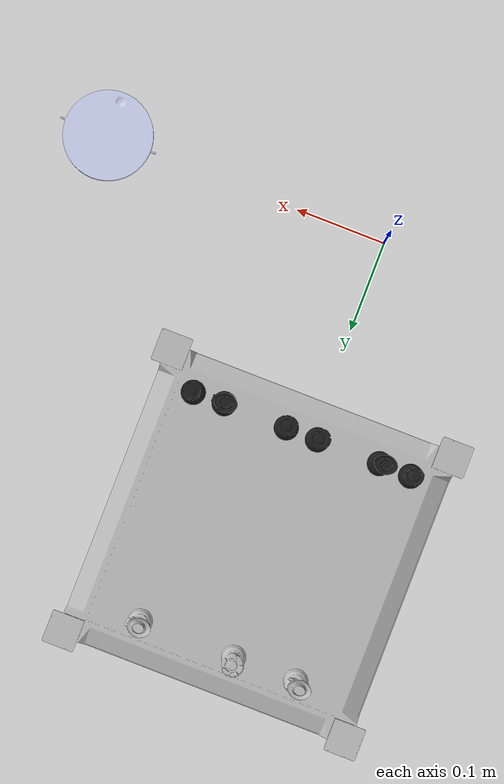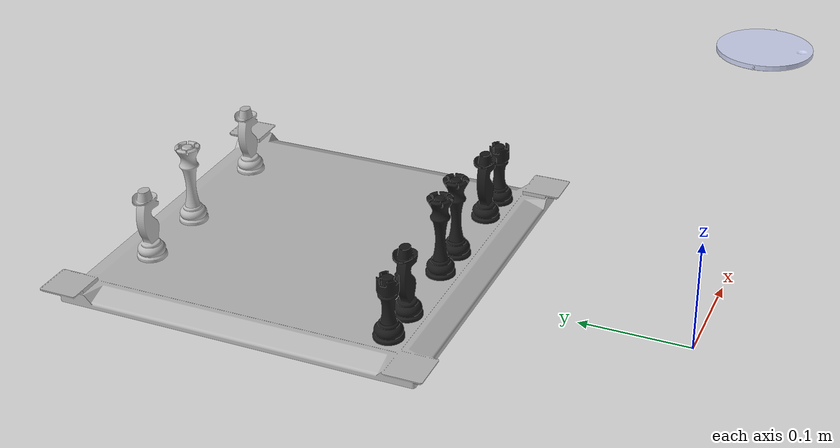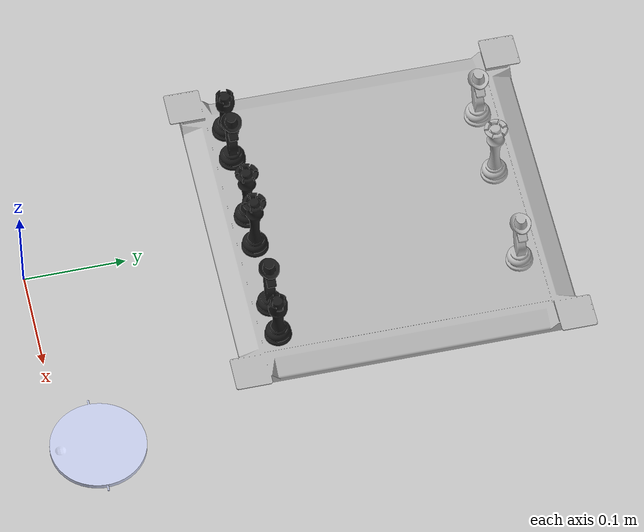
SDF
<sdf version="1.7">
 <world name="default">
  <gravity>0 0 -9.8</gravity>
  <magnetic_field>6e-06 2.3e-05 -4.2e-05</magnetic_field>
  <atmosphere type="adiabatic"/>
  <physics type="ode">
   <max_step_size>0.001</max_step_size>
   <real_time_factor>1</real_time_factor>
   <real_time_update_rate>1000</real_time_update_rate>
  </physics>
  <scene><ambient>0.4 0.4 0.4 1</ambient><background>0.7 0.7 0.7 1</background><shadows>1</shadows></scene>
  <audio><device>default</device></audio>
  <spherical_coordinates>
   <surface_model>EARTH_WGS84</surface_model>
   <latitude_deg>0</latitude_deg>
   <longitude_deg>0</longitude_deg>
   <elevation>0</elevation>
   <heading_deg>0</heading_deg>
  </spherical_coordinates>
  <model name="board">
   <static>1</static>
   <link name="link">
    <visual name="visual"><geometry><mesh><uri>model://board/meshes/board.dae</uri></mesh></geometry></visual>
    <collision name="collision">
     <geometry><mesh><uri>model://board/meshes/board.dae</uri></mesh></geometry>
    </collision>
   </link>
   <pose>-0.011355 0.342107 0.010873 0 -0 0</pose>
  </model>
  <light name="user_point_light_0" type="point">
   <pose>-0.050834 1.0999 1 0 -0 0</pose>
   <diffuse>0.5 0.5 0.5 1</diffuse>
   <specular>0.1 0.1 0.1 1</specular>
   <attenuation>
    <range>20</range>
    <constant>0.5</constant>
    <linear>0.01</linear>
    <quadratic>0.001</quadratic>
   </attenuation>
   <cast_shadows>0</cast_shadows>
   <direction>0 0 -1</direction>
   <spot><inner_angle>0</inner_angle><outer_angle>0</outer_angle><falloff>0</falloff></spot>
  </light>
  <model name="black_rook_a8">
   <static>0</static>
   <link name="link">
    <inertial>
     <mass>0.05</mass>
     <inertia><ixx>1e-05</ixx><iyy>1e-05</iyy><izz>1e-05</izz><ixy>0</ixy><ixz>0</ixz><iyz>0</iyz></inertia>
    </inertial>
    <collision name="collision">
     <geometry><mesh><uri>model://black_rook/meshes/black_rook.dae</uri></mesh></geometry>
     <surface><friction><ode><mu>1</mu><mu2>1</mu2></ode></friction></surface>
    </collision>
    <visual name="visual">
     <geometry><mesh><uri>model://black_rook/meshes/black_rook.dae</uri></mesh></geometry>
    </visual>
   </link>
   <plugin name="ros2_objectpose_plugin" filename="libros2_objectpose_plugin.so">
    <ros><namespace>black_rook_a8</namespace></ros>
   </plugin>
   <pose>0.131841 0.22245 0.024973 -9e-06 -9.3e-05 -0.00089</pose>
  </model>
  <model name="black_rook_h8">
   <static>0</static>
   <link name="link">
    <inertial>
     <mass>0.05</mass>
     <inertia><ixx>1e-05</ixx><iyy>1e-05</iyy><izz>1e-05</izz><ixy>0</ixy><ixz>0</ixz><iyz>0</iyz></inertia>
    </inertial>
    <collision name="collision">
     <geometry><mesh><uri>model://black_rook/meshes/black_rook.dae</uri></mesh></geometry>
     <surface><friction><ode><mu>1</mu><mu2>1</mu2></ode></friction></surface>
    </collision>
    <visual name="visual">
     <geometry><mesh><uri>model://black_rook/meshes/black_rook.dae</uri></mesh></geometry>
    </visual>
   </link>
   <plugin name="ros2_objectpose_plugin" filename="libros2_objectpose_plugin.so">
    <ros><namespace>black_rook_h8</namespace></ros>
   </plugin>
   <pose>-0.113193 0.222528 0.024967 0.000528 -0.000646 -0.001962</pose>
  </model>
  <model name="black_knight_b8">
   <static>0</static>
   <link name="link">
    <inertial>
     <mass>0.05</mass>
     <inertia><ixx>1e-05</ixx><iyy>1e-05</iyy><izz>1e-05</izz><ixy>0</ixy><ixz>0</ixz><iyz>0</iyz></inertia>
    </inertial>
    <collision name="collision">
     <geometry><mesh><uri>model://black_knight/meshes/black_knight.dae</uri></mesh></geometry>
     <surface><friction><ode><mu>1</mu><mu2>1</mu2></ode></friction></surface>
    </collision>
    <visual name="visual">
     <geometry><mesh><uri>model://black_knight/meshes/black_knight.dae</uri></mesh></geometry>
    </visual>
   </link>
   <plugin name="ros2_objectpose_plugin" filename="libros2_objectpose_plugin.so">
    <ros><namespace>black_knight_b8</namespace></ros>
   </plugin>
   <pose>0.096603 0.222405 0.024973 6.9e-05 -2.5e-05 -0.000115</pose>
  </model>
  <model name="black_knight_g8">
   <static>0</static>
   <link name="link">
    <inertial>
     <mass>0.05</mass>
     <inertia><ixx>1e-05</ixx><iyy>1e-05</iyy><izz>1e-05</izz><ixy>0</ixy><ixz>0</ixz><iyz>0</iyz></inertia>
    </inertial>
    <collision name="collision">
     <geometry><mesh><uri>model://black_knight/meshes/black_knight.dae</uri></mesh></geometry>
     <surface><friction><ode><mu>1</mu><mu2>1</mu2></ode></friction></surface>
    </collision>
    <visual name="visual">
     <geometry><mesh><uri>model://black_knight/meshes/black_knight.dae</uri></mesh></geometry>
    </visual>
   </link>
   <plugin name="ros2_objectpose_plugin" filename="libros2_objectpose_plugin.so">
    <ros><namespace>black_knight_g8</namespace></ros>
   </plugin>
   <pose>-0.078397 0.222405 0.024973 5.6e-05 -2e-05 -0.000113</pose>
  </model>
  <model name="white_knight_b1">
   <static>0</static>
   <link name="link">
    <inertial>
     <mass>0.05</mass>
     <inertia><ixx>1e-05</ixx><iyy>1e-05</iyy><izz>1e-05</izz><ixy>0</ixy><ixz>0</ixz><iyz>0</iyz></inertia>
    </inertial>
    <collision name="collision">
     <geometry><mesh><uri>model://white_knight/meshes/white_knight.dae</uri></mesh></geometry>
     <surface><friction><ode><mu>1</mu><mu2>1</mu2></ode></friction></surface>
    </collision>
    <visual name="visual">
     <geometry><mesh><uri>model://white_knight/meshes/white_knight.dae</uri></mesh></geometry>
    </visual>
   </link>
   <plugin name="ros2_objectpose_plugin" filename="libros2_objectpose_plugin.so">
    <ros><namespace>white_knight_b1</namespace></ros>
   </plugin>
   <pose>0.096604 0.467405 0.024973 6.4e-05 -2.3e-05 -0.000115</pose>
  </model>
  <model name="white_knight_g1">
   <static>0</static>
   <link name="link">
    <inertial>
     <mass>0.05</mass>
     <inertia><ixx>1e-05</ixx><iyy>1e-05</iyy><izz>1e-05</izz><ixy>0</ixy><ixz>0</ixz><iyz>0</iyz></inertia>
    </inertial>
    <collision name="collision">
     <geometry><mesh><uri>model://white_knight/meshes/white_knight.dae</uri></mesh></geometry>
     <surface><friction><ode><mu>1</mu><mu2>1</mu2></ode></friction></surface>
    </collision>
    <visual name="visual">
     <geometry><mesh><uri>model://white_knight/meshes/white_knight.dae</uri></mesh></geometry>
    </visual>
   </link>
   <plugin name="ros2_objectpose_plugin" filename="libros2_objectpose_plugin.so">
    <ros><namespace>white_knight_g1</namespace></ros>
   </plugin>
   <pose>-0.078398 0.467405 0.024973 6.9e-05 -2.5e-05 -0.000119</pose>
  </model>
  <model name="black_queen_d8">
   <static>0</static>
   <link name="link">
    <inertial>
     <mass>0.05</mass>
     <inertia><ixx>1e-05</ixx><iyy>1e-05</iyy><izz>1e-05</izz><ixy>0</ixy><ixz>0</ixz><iyz>0</iyz></inertia>
    </inertial>
    <collision name="collision">
     <geometry><mesh><uri>model://black_queen/meshes/black_queen.dae</uri></mesh></geometry>
     <surface><friction><ode><mu>1</mu><mu2>1</mu2></ode></friction></surface>
    </collision>
    <visual name="visual">
     <geometry><mesh><uri>model://black_queen/meshes/black_queen.dae</uri></mesh></geometry>
    </visual>
   </link>
   <plugin name="ros2_objectpose_plugin" filename="libros2_objectpose_plugin.so">
    <ros><namespace>black_queen_d8</namespace></ros>
   </plugin>
   <pose>0.02673 0.222547 0.024965 0.000416 -0.00072 0.001719</pose>
  </model>
  <model name="black_king_e8">
   <static>0</static>
   <link name="link">
    <inertial>
     <mass>0.05</mass>
     <inertia><ixx>1e-05</ixx><iyy>1e-05</iyy><izz>1e-05</izz><ixy>0</ixy><ixz>0</ixz><iyz>0</iyz></inertia>
    </inertial>
    <collision name="collision">
     <geometry><mesh><uri>model://black_king/meshes/black_king.dae</uri></mesh></geometry>
     <surface><friction><ode><mu>1</mu><mu2>1</mu2></ode></friction></surface>
    </collision>
    <visual name="visual">
     <geometry><mesh><uri>model://black_king/meshes/black_king.dae</uri></mesh></geometry>
    </visual>
   </link>
   <plugin name="ros2_objectpose_plugin" filename="libros2_objectpose_plugin.so">
    <ros><namespace>black_king_e8</namespace></ros>
   </plugin>
   <pose>-0.008361 0.222435 0.024973 5.1e-05 -3.4e-05 0.00119</pose>
  </model>
  <model name="white_king_e1">
   <static>0</static>
   <link name="link">
    <inertial>
     <mass>0.05</mass>
     <inertia><ixx>1e-05</ixx><iyy>1e-05</iyy><izz>1e-05</izz><ixy>0</ixy><ixz>0</ixz><iyz>0</iyz></inertia>
    </inertial>
    <collision name="collision">
     <geometry><mesh><uri>model://white_king/meshes/white_king.dae</uri></mesh></geometry>
     <surface><friction><ode><mu>1</mu><mu2>1</mu2></ode></friction></surface>
    </collision>
    <visual name="visual">
     <geometry><mesh><uri>model://white_king/meshes/white_king.dae</uri></mesh></geometry>
    </visual>
   </link>
   <plugin name="ros2_objectpose_plugin" filename="libros2_objectpose_plugin.so">
    <ros><namespace>white_king_e1</namespace></ros>
   </plugin>
   <pose>-0.0084 0.4674 0.024973 5.1e-05 -3.4e-05 -9e-06</pose>
  </model>
  <plugin name="gazebo_link_attacher" filename="libgazebo_link_attacher.so"/>
  <model name="chess_bin_lid">
   <static>0</static>
   <link name="link">
    <inertial>
     <mass>0.02</mass>
     <inertia><ixx>1e-05</ixx><iyy>1e-05</iyy><izz>1e-05</izz><ixy>0</ixy><ixz>0</ixz><iyz>0</iyz></inertia>
    </inertial>
    <collision name="collision">
     <geometry><mesh><uri>model://chess_bin_lid/meshes/chess_bin_lid.dae</uri></mesh></geometry>
     <surface><friction><ode><mu>1</mu><mu2>1</mu2></ode></friction></surface>
    </collision>
    <visual name="visual">
     <geometry><mesh><uri>model://chess_bin_lid/meshes/chess_bin_lid.dae</uri></mesh></geometry>
    </visual>
   </link>
   <pose>0.294976 0.018694 -0.001846 -0.008674 -2.5e-05 -2.5e-05</pose>
  </model>
 </world>
</sdf>
